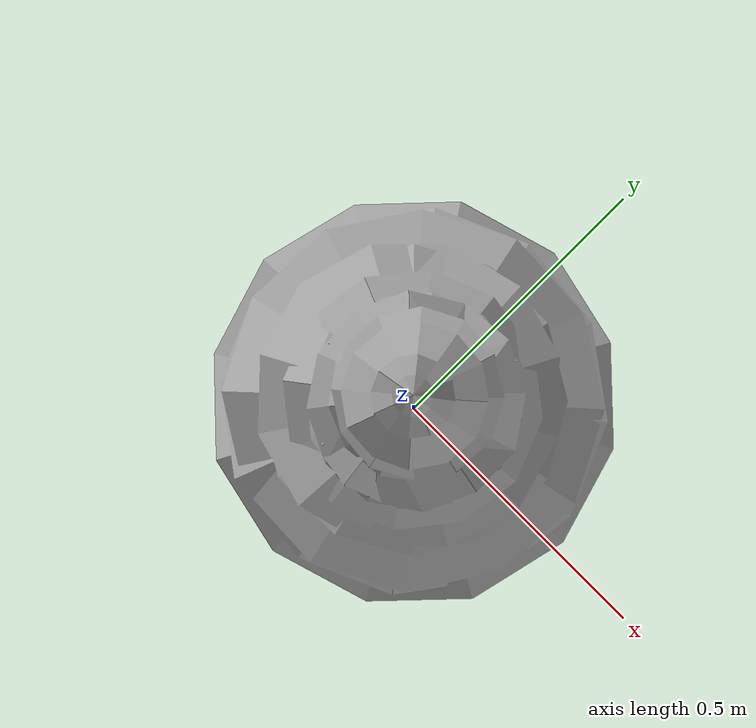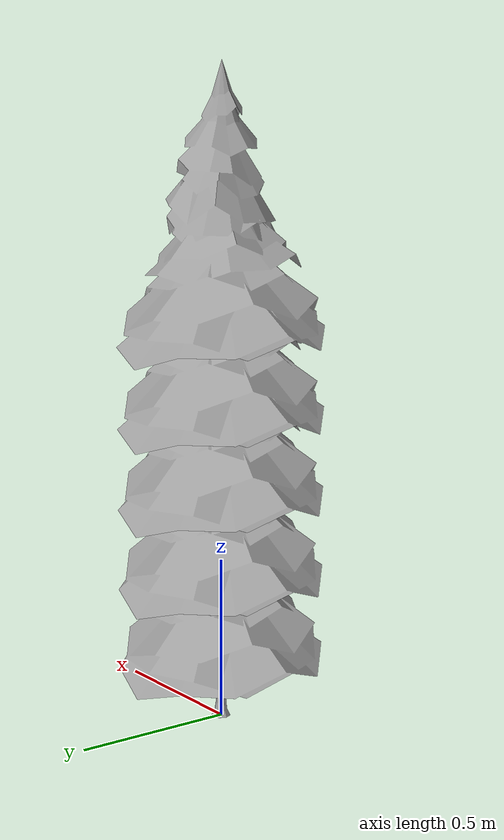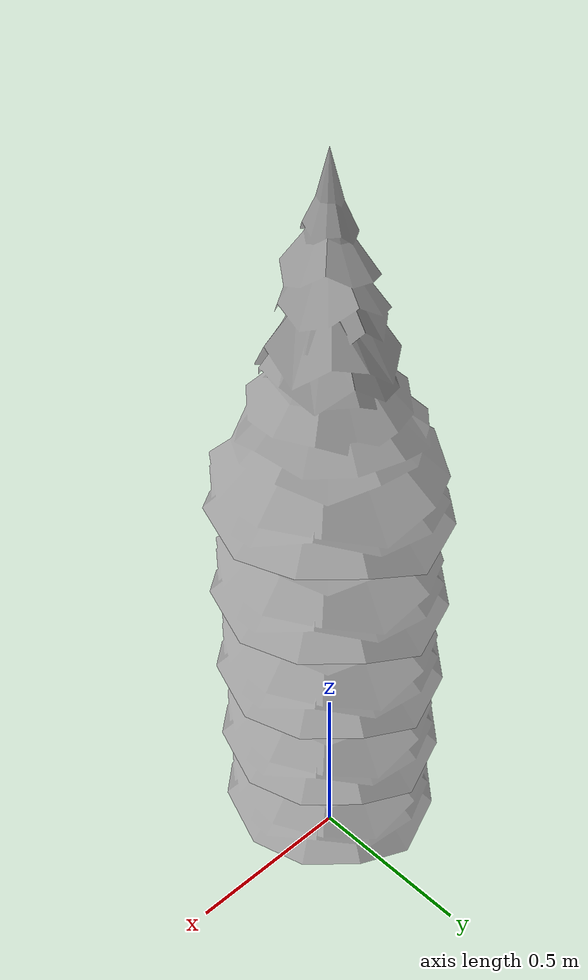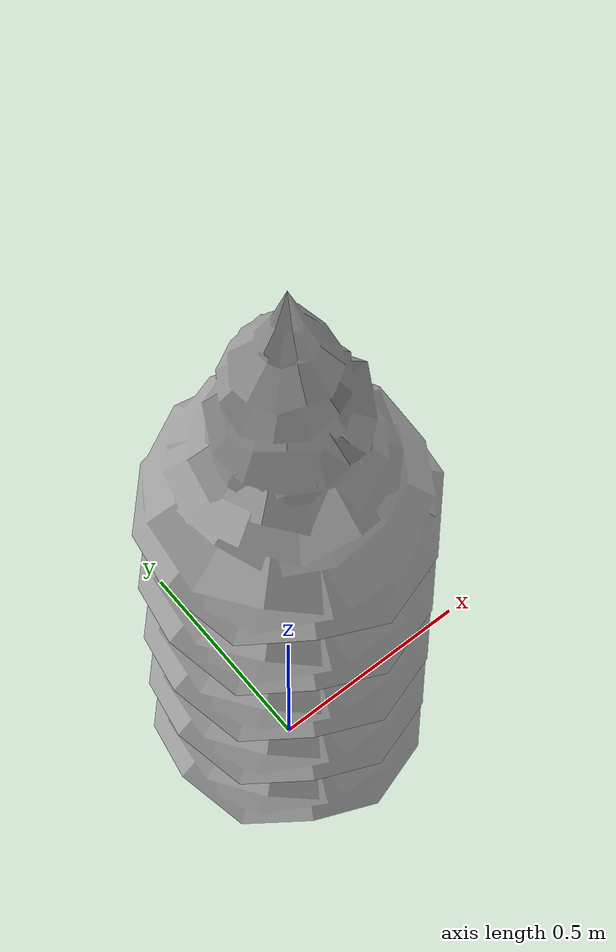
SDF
<?xml version="1.0" ?>
<sdf version="1.6">
  <model name="thin_2m_pine_tree">
    <static>true</static>
    <include>
      <name>tree0</name>
      <static>1</static>
      <uri>model://1m_pine_tree</uri>
      <pose>0 0 0 0 0 0</pose>
    </include>
    <include>
      <name>tree2</name>
      <static>1</static>
      <uri>model://1m_pine_tree</uri>
      <pose>0 0 0.25 0 0 0</pose>
    </include>
    <include>
      <name>tree3</name>
      <static>1</static>
      <uri>model://1m_pine_tree</uri>
      <pose>0 0 0.5 0 0 0</pose>
    </include>
    <include>
      <name>tree4</name>
      <static>1</static>
      <uri>model://1m_pine_tree</uri>
      <pose>0 0 0.75 0 0 0</pose>
    </include>
    <include>
      <name>tree6</name>
      <static>1</static>
      <uri>model://1m_pine_tree</uri>
      <pose>0 0 1.0 0 0 0</pose>
    </include>
  </model>
</sdf>

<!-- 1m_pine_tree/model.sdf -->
<sdf version="1.6">
  <model name="1m_pine_tree">
    <static>true</static>
    <link name="link">
      <collision name="collision">
        <pose>0 0 0 0 0 0</pose>
        <geometry>
          <mesh>
            <uri>model://1m_pine_tree/meshes/1m_pine_tree.dae</uri>
          </mesh>
        </geometry>
      </collision>
      <visual name="branch">
        <pose>0 0 0 0 0 0</pose>
        <geometry>
          <mesh>
            <uri>model://1m_pine_tree/meshes/1m_pine_tree.dae</uri>
            <submesh>
              <name>Branch</name>
            </submesh>
          </mesh>
        </geometry>
        <material>
          <script>
            <uri>model://1m_pine_tree/materials/scripts/</uri>
            <uri>model://1m_pine_tree/materials/textures/</uri>
            <name>PineTree/Branch</name>
          </script>
        </material>
      </visual>
      <visual name="bark">
        <pose>0 0 0 0 0 0</pose>
        <geometry>
          <mesh>
            <uri>model://1m_pine_tree/meshes/1m_pine_tree.dae</uri>
            <submesh>
              <name>Bark</name>
            </submesh>
          </mesh>
        </geometry>
        <material>
          <script>
            <uri>model://1m_pine_tree/materials/scripts/</uri>
            <uri>model://1m_pine_tree/materials/textures/</uri>
            <name>PineTree/Bark</name>
          </script>
        </material>
      </visual>
    </link>
  </model>
</sdf>
